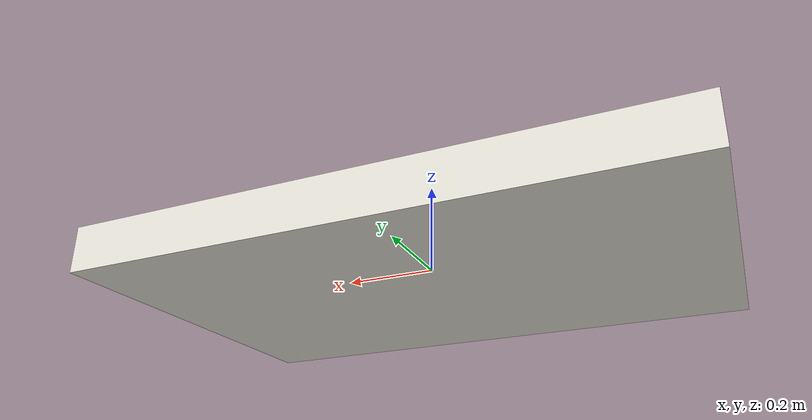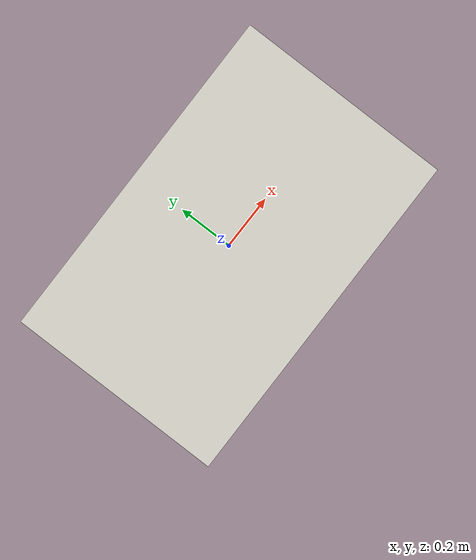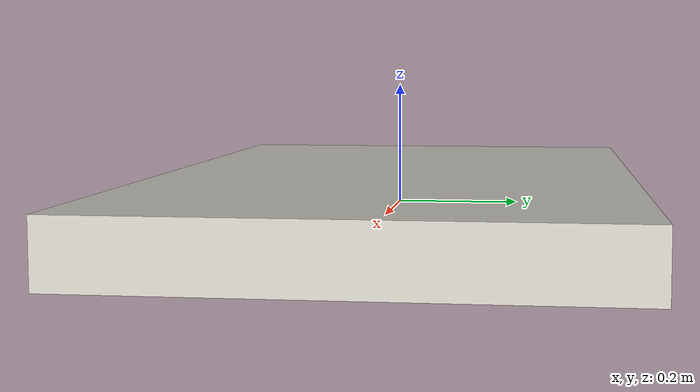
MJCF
<mujoco model="carry box table">
  <worldbody>
    <body name="top">
      <geom name="collision" type="box" size="0.625 0.395 0.05" friction="2 0.04 0.0005" condim="6" priority="10" rgba="0.85 0.84 0.8 1" material="pearl" />
    </body>
  </worldbody>
  <asset>
    <material name="pearl" rgba="0.85 0.84 0.8 1" specular="0.6" shininess="0.5" />
  </asset>
</mujoco>
